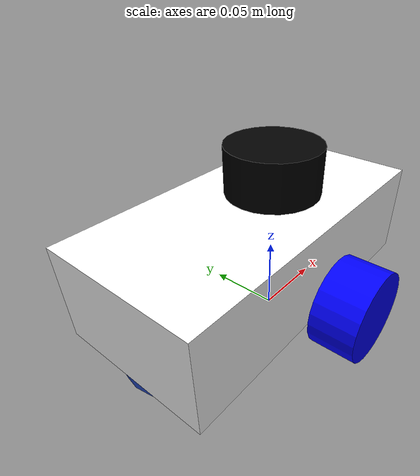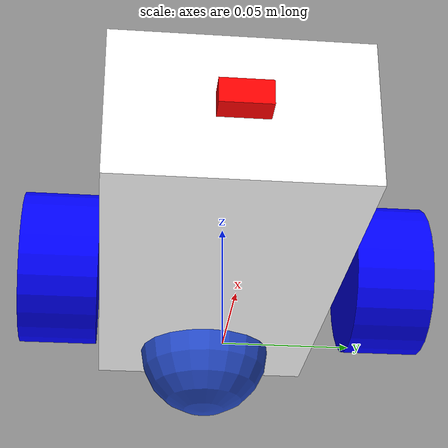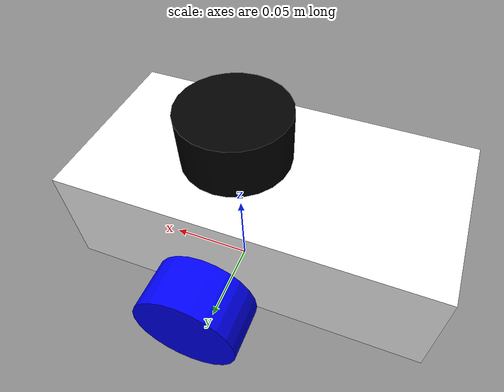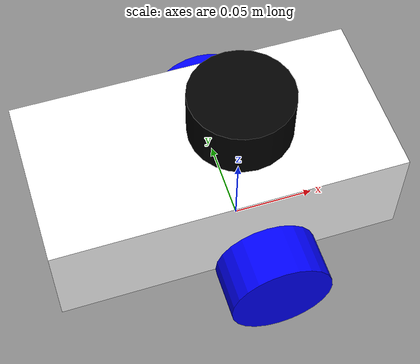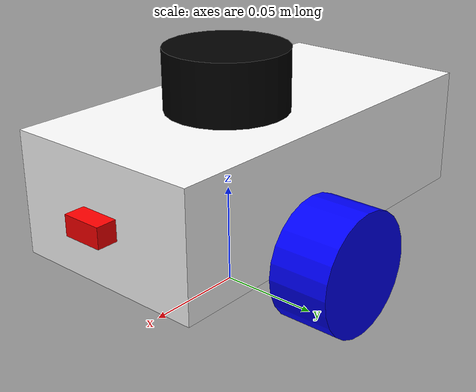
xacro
<?xml version="1.0"?>
<robot xmlns:xacro="http://www.ros.org/wiki/xacro" name="urdf_tutorial">

    <!-- MACROS -->
    <xacro:include filename="macro.xacro"/>

    <!-- COLOR -->
    <material name="white">
        <color rgba="1 1 1 1" />
    </material>

    <material name="blue">
        <color rgba="0 0 1 1"/>
    </material>

    <material name="black">
        <color rgba="0 0 0 1"/>
    </material>

    <material name="red">
        <color rgba="1 0 0 1"/>
    </material>

    <link name="base_footprint"/>

    <joint name="base_footprint_joint" type="fixed">
        <parent link="base_footprint"/>
        <child link="base_link"/>
        <origin xyz="0 0 0.03" rpy="0 0 0"/>
    </joint>

    <!-- BASE LINK -->
    <link name="base_link">
    </link>

    <!-- BODY LINK -->
    <joint name="body_joint" type="fixed">
        <parent link="base_link"/>
        <child link="body"/>
        <origin xyz="-0.12 0 0"/>
    </joint>

    <link name="body">
        <visual>
            <origin xyz="0.1 0 0.03"/>
            <geometry>
                <box size="0.2 0.1 0.06"/>
            </geometry>
            <material name="white"/>
        </visual>
        <collision>
            <origin xyz="0.1 0 0.03"/>
            <geometry>
                <box size="0.2 0.1 0.06"/>
            </geometry>
        </collision>
        <xacro:inertial_box mass="0.5" x="0.2" y="0.1" z="0.06">
            <origin xyz="0.1 0 0.03" rpy="0 0 0"/>
        </xacro:inertial_box>
    </link>

    <gazebo reference="body">
        <material>Gazebo/White</material>
    </gazebo>

    <!-- LEFT WHEEL LINK -->
    <joint name="left_wheel_joint" type="continuous">
        <parent link="base_link"/>
        <child link="left_wheel"/>
        <origin xyz="0 0.065 0" rpy="-${pi/2} 0 0" />
        <axis xyz="0 0 1"/>
    </joint>

    <link name="left_wheel">
        <visual>
            <geometry>
                <cylinder radius="0.03" length="0.03"/>
            </geometry>
            <material name="blue"/>
        </visual>
        <collision>
            <geometry>
                <cylinder radius="0.03" length="0.03"/>
            </geometry>
        </collision>
        <xacro:inertial_cylinder mass="0.1" length="0.03" radius="0.03">
            <origin xyz="0 0 0" rpy="0 0 0"/>
        </xacro:inertial_cylinder>
    </link>

    <gazebo reference="left_wheel">
        <material>Gazebo/Black</material>
    </gazebo>

    <!-- RIGHT WHEEL LINK -->
    <joint name="right_wheel_joint" type="continuous">
        <parent link="base_link"/>
        <child link="right_wheel"/>
        <origin xyz="0 -0.065 0" rpy="${pi/2} 0 0" />
        <axis xyz="0 0 -1"/>
    </joint>

    <link name="right_wheel">
        <visual>
            <geometry>
                <cylinder radius="0.03" length="0.03"/>
            </geometry>
            <material name="blue"/>
        </visual>
        <collision>
            <geometry>
                <cylinder radius="0.03" length="0.03"/>
            </geometry>
        </collision>
        <xacro:inertial_cylinder mass="0.1" length="0.03" radius="0.03">
            <origin xyz="0 0 0" rpy="0 0 0"/>
        </xacro:inertial_cylinder>
    </link>

    <gazebo reference="right_wheel">
        <material>Gazebo/Black</material>
    </gazebo>

    <!-- CASTER WHEEL LINK -->
    <joint name="caster_wheel_joint" type="fixed">
        <parent link="body"/>
        <child link="caster_wheel"/>
        <origin xyz="0.03 0 0"/>
    </joint>

    <link name="caster_wheel">
        <visual>
            <geometry>
                <sphere radius="0.03"/>
            </geometry>
        </visual>
        <collision>
            <geometry>
                <sphere radius="0.03"/>
            </geometry>
        </collision>
        <xacro:inertial_sphere mass="0.1" radius="0.03">
            <origin xyz="0 0 0" rpy="0 0 0"/>
        </xacro:inertial_sphere>
    </link>

    <gazebo reference="caster_wheel">
        <material>Gazebo/Blue</material>

        <mu1 value="0.001"/>
        <mu2 value="0.001"/>
    </gazebo>

    <!-- LIDAR LINK -->
    <link name="lidar_link">
        <visual>
            <geometry>
                <cylinder radius="0.03" length="0.03"/>
            </geometry>
            <material name="black"/>
        </visual>
        <collision>
            <geometry>
                <cylinder radius="0.03" length="0.03"/>
            </geometry>
        </collision>
        <inertial>
            <mass value="0.1"/>
            <origin xyz="0 0 0" rpy="0 0 0"/>
            <inertia ixx="0.01" ixy="0.0" ixz="0.0" iyy="0.01" iyz="0.0" izz="0.01"/>
        </inertial>
    </link>

    <joint name="laser_joint" type="fixed">
        <parent link="base_link"/>
        <child link="lidar_link"/>
        <origin xyz="0 0 0.075" rpy="0 0 0" />
    </joint>

    <!-- 3D Lidar sensor using ray -->
    <gazebo reference="lidar_link">
        <material name="red"/>

        <sensor name="laser" type="ray">
            <pose>0 0 0 0 0 0</pose>
            <visualize>true</visualize>
            <update_rate>10</update_rate>
            <ray>
                <scan>
                    <horizontal>
                        <samples>360</samples>
                        <resolution>1</resolution>
                        <min_angle>-3.14159265</min_angle>
                        <max_angle>3.14159265</max_angle>
                    </horizontal>
                    <vertical>
                        <samples>16</samples>
                        <resolution>1</resolution>
                        <min_angle>-0.261799</min_angle> <!-- -15 degrees -->
                        <max_angle>0.261799</max_angle> <!-- 15 degrees -->
                    </vertical>
                </scan>
                <range>
                    <min>0.3</min>
                    <max>12.0</max>
                    <resolution>0.01</resolution>
                </range>
            </ray>
            <plugin name="laser_controller" filename="libgazebo_ros_ray_sensor.so">
                <ros>
                    <argument>~/out:=points</argument>
                </ros>
                <output_type>sensor_msgs/PointCloud2</output_type>
                <frame_name>lidar_link</frame_name>
            </plugin>
        </sensor>
    </gazebo>

    <!-- camera -->
    <link name="camera_link">
        <visual>
            <origin xyz="0.005 0.0 0.005" rpy="0.0 0.0 0.0"/>
            <geometry>
                <box size="0.01 0.02 0.01"/>
            </geometry>
            <material name="red"/>
        </visual>
        <collision>
            <geometry>
                <box size="0.01 0.02 0.01"/>
            </geometry>
        </collision>
        <xacro:inertial_box mass="0.02" x="0.02" y="0.01" z="0.01">
            <origin xyz="0 0 0.0" rpy="0 0 0"/>
        </xacro:inertial_box>
    </link>

    <joint name="camera_baselink_joint" type="fixed">
        <parent link="base_link"/>
        <child link="camera_link"/>
        <origin xyz="0.08 0.0 0.025" rpy="0.0 0.0 0.0"/>
    </joint>

    <!-- Camera Optical Link for ROS coordinate convention -->
    <joint name="camera_optical_joint" type="fixed">
        <parent link="camera_link"/>
        <child link="camera_link_optical"/>
        <origin xyz="0 0 0" rpy="-${pi/2} 0 -${pi/2}"/>
    </joint>
    <link name="camera_link_optical"/>

    <gazebo reference="camera_link">
        <sensor name="camera" type="camera">
            <update_rate>10</update_rate>
            <pose>0 0 0 0 0 0</pose>
            <visualize>true</visualize>
            <camera>
                <horizontal_fov>1.5708</horizontal_fov>
                <image>
                    <width>640</width>
                    <height>480</height>
                    <format>R8G8B8</format>
                </image>
                <clip>
                    <near>0.01</near>
                    <far>50.0</far>
                </clip>
            </camera>
            <plugin name="camera_controller" filename="libgazebo_ros_camera.so">
                <ros>
                    <namespace>/my_robot</namespace>
                    <remapping>~/image_raw:=image_raw</remapping>
                    <remapping>~/camera_info:=camera_info</remapping>
                </ros>
                <frame_name>camera_link_optical</frame_name>
                <update_rate>10.0</update_rate>
            </plugin>
        </sensor>
    </gazebo>

    <!-- GAZEBO -->
    <xacro:include filename="gazebo.xacro"/>

</robot>
